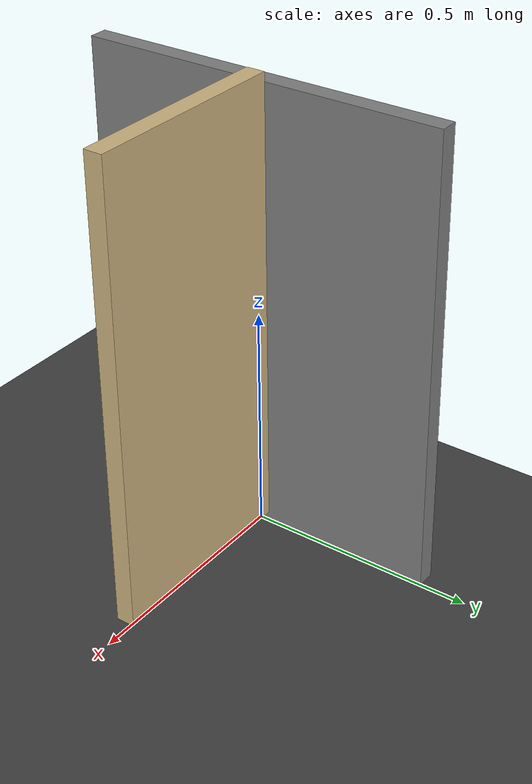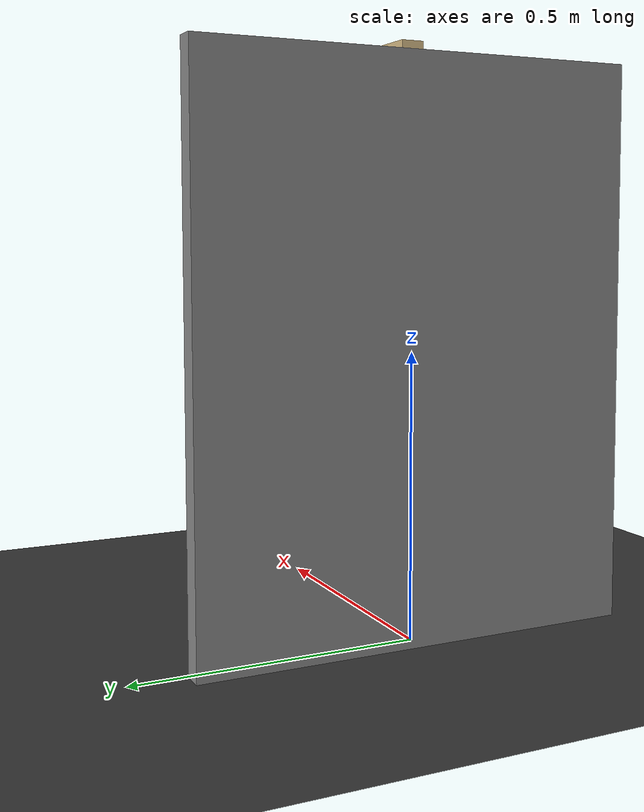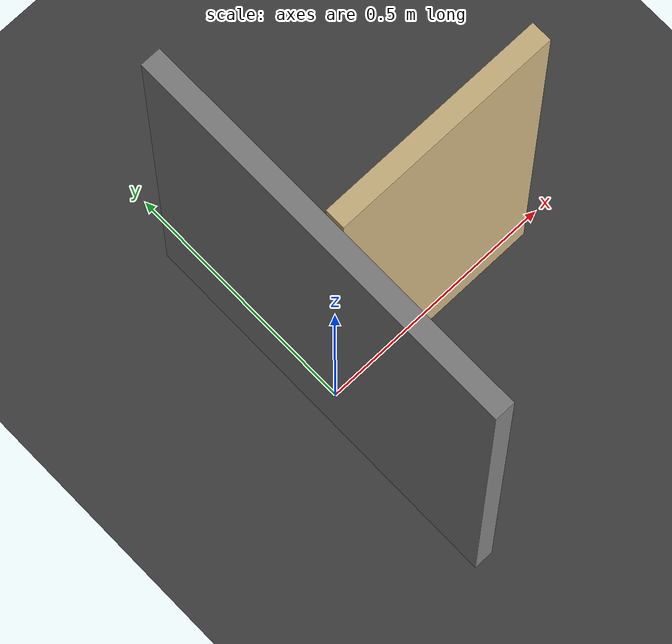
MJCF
<mujoco model="single_hinge_door_small">
  <compiler angle="radian"/>
  <option timestep="0.002" gravity="0 0 -9.81"/>

  <asset>
    <texture type="skybox" builtin="gradient" rgb1="0.8 0.9 1" rgb2="0.3 0.4 0.5" width="256" height="256"/>
    <texture name="grid" type="2d" builtin="checker" rgb1="0.2 0.2 0.2" rgb2="0.3 0.3 0.3" width="300" height="300"/>
    <material name="grid" texture="grid" texrepeat="5 5" reflectance="0.1"/>
  </asset>

  <worldbody>
    <light pos="0 -1 2" dir="0 0.3 -1" diffuse="1 1 1"/>
    <geom name="floor" type="plane" size="3 3 0.1" material="grid"/>

    <geom name="wall" type="box" pos="-0.02 0 0.5" size="0.02 0.4 0.5"
          rgba="0.5 0.5 0.5 1" contype="0" conaffinity="0"/>

    <body name="door" pos="0 0 0">
      <joint name="hinge" type="hinge" pos="0 0 0" axis="0 0 1"
             limited="true" range="-0.17 2.09"
             damping="0.05" frictionloss="0.6"/>
      <geom name="panel" type="box" pos="0.225 0 0.52" size="0.225 0.02 0.5"
            density="600" rgba="0.8 0.7 0.5 1"/>
      <site name="handle" pos="0.4 0 0.5" size="0.02" rgba="1 0 0 1"/>
    </body>

    <camera name="view" pos="1.3 -1.5 1.1" xyaxes="1 0.9 0 0 0.4 1"/>
  </worldbody>
</mujoco>
